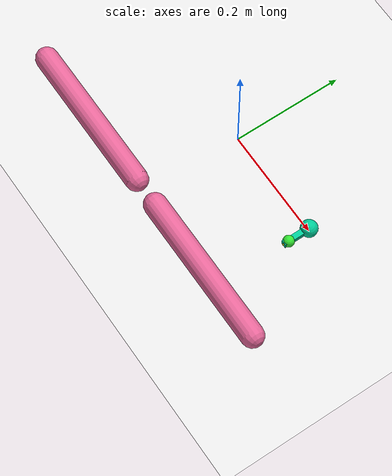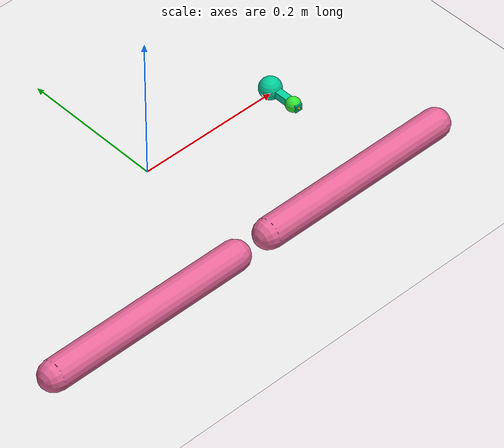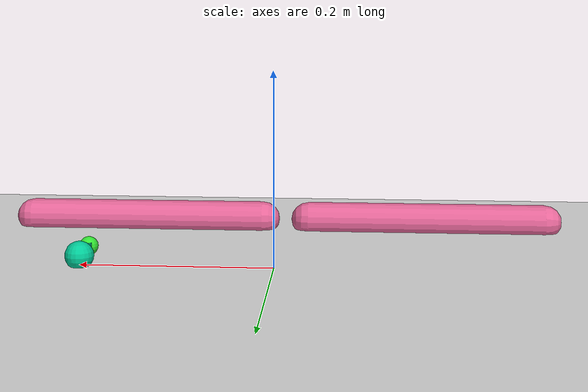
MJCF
<mujoco model="reacher">
	<compiler angle="radian" inertiafromgeom="true"/>
	<default>
		<joint armature="1" damping="1" limited="true"/>
		<geom friction="1 0.1 0.1" contype="0" conaffinity="0" rgba="0.7 0.7 0 1"/>
	</default>
	<option gravity="0 0 -9.81" integrator="RK4" timestep="0.01"/>
	<worldbody>
		<!-- Arena -->
		<geom conaffinity="1" name="ground" pos="0 0 0" rgba="0.9 0.9 0.9 1" size="1 1 10" type="plane"/>
		<geom conaffinity="1" fromto="-.3 -.18 .01 -.027 -.18 .01" name="sideL" rgba="0.9 0.4 0.6 1" size=".02" type="capsule"/>
		<geom conaffinity="1" fromto="0.027 -.18 .01 .3 -.18 .01" name="sideR" rgba="0.9 0.4 0.6 1" size=".02" type="capsule"/>
		<!-- Arm -->
		<body name="fingertip" pos="0.2 0 .01">
			<joint name="root_x" type="slide"  pos="0 0 0" axis="1 0 0" ref="0.2" range="-.3 .3"/>
			<joint name="root_y" type="slide"  pos="0 0 0" axis="0 1 0" range="-.3 .3"/>
			<geom conaffinity="1" contype="1" name="fingertip" pos="0 0 0" rgba="0.0 0.8 0.6 1" size=".015" type="sphere"/>
			<geom conaffinity="1" contype="1" name="peg" mass="0.00001" type="box" pos="0 -0.025 0" size="0.005 0.025 0.005" rgba="0.0 0.8 0.6 1"/>
			<body name="peg" pos="0 -0.05 0">
				<geom conaffinity="1" contype="1" name="pegtip" type="sphere" size="0.002"/>
			</body>
		</body>

		<body name="highlevel" pos="0.2 -0.04 0.01">
      		<geom conaffinity="0" contype="0" name="highlevel" pos="0 0 0" rgba="0.2 0.9 0.2 1" size=".01" type="sphere"/>
    	</body>

	</worldbody>
	<actuator>
		<motor joint='root_x' ctrlrange="-1 1" ctrllimited="true" gear="125.0"/>
    	<motor joint='root_y' ctrlrange="-1 1" ctrllimited="true" gear="125.0" />
	</actuator>
</mujoco>
